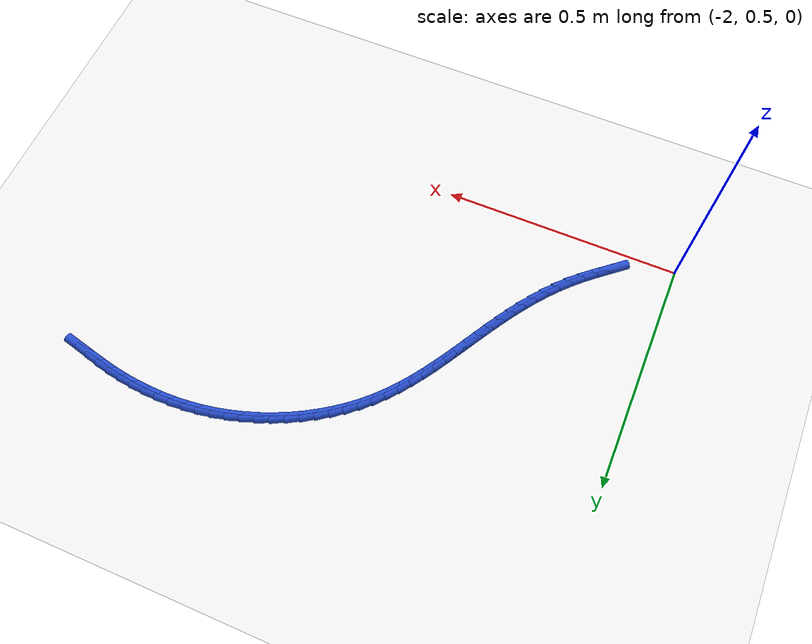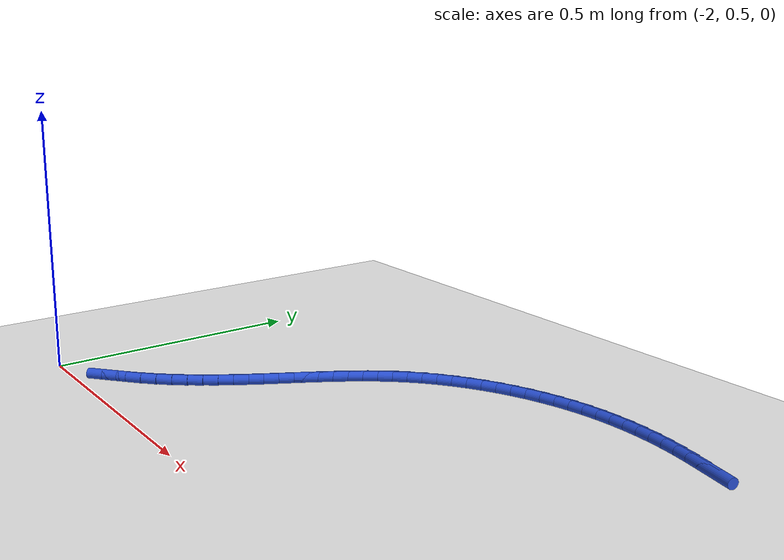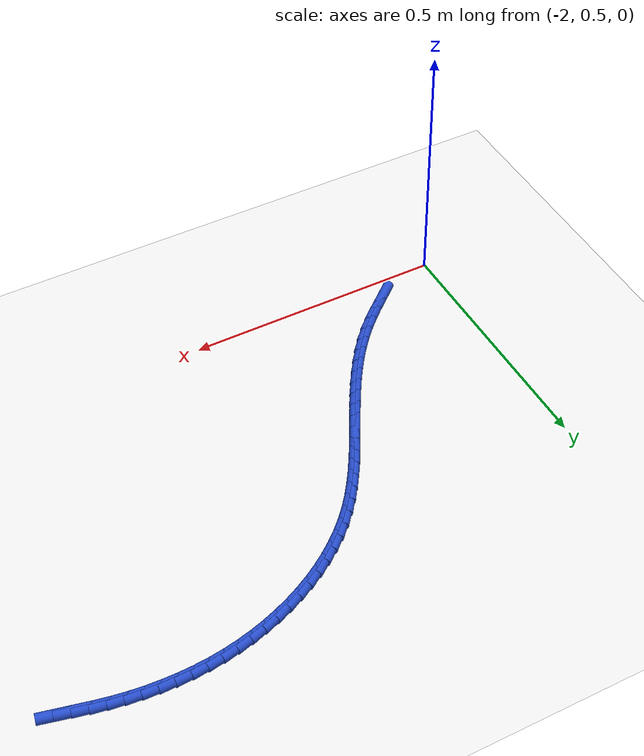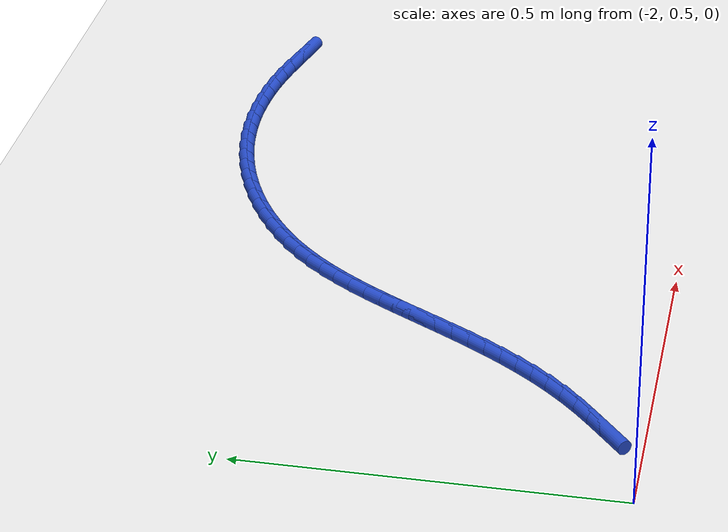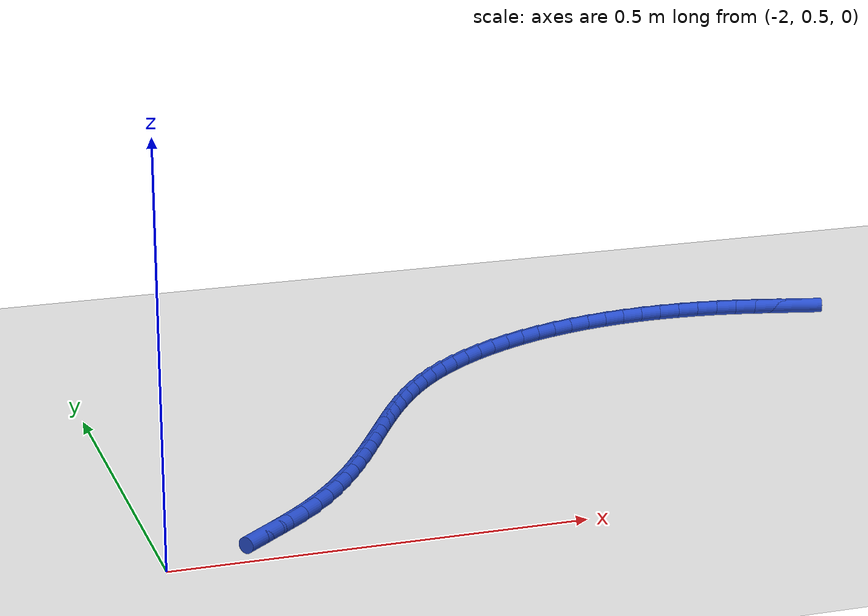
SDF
<sdf version="1.6">
 <world name="default">
  <model name="ground_plane">
   <static>1</static>
   <link name="link">
    <collision name="collision">
     <geometry><plane><normal>0 0 1</normal><size>100 100</size></plane></geometry>
     <surface><friction><ode><mu>100</mu><mu2>50</mu2></ode></friction></surface>
    </collision>
    <visual name="visual">
     <cast_shadows>0</cast_shadows>
     <geometry><plane><normal>0 0 1</normal><size>100 100</size></plane></geometry>
     <material>
      <script><uri>file://media/materials/scripts/gazebo.material</uri><name>Gazebo/WhiteGlow</name></script>
     </material>
    </visual>
   </link>
  </model>
  <model name="line">
   <link name="link_58">
    <pose>-0.9553868395924993 1.1362226404505071 0.01 0 1.57 -0.23844774797125545</pose>
    <collision name="collision">
     <geometry><cylinder><radius>0.01</radius><length>0.08</length></cylinder></geometry>
    </collision>
    <visual name="visual">
     <material>
      <script><name>Gazebo/Blue</name><uri>file://media/materials/scripts/gazebo.material</uri></script>
     </material>
     <geometry><cylinder><radius>0.01</radius><length>0.08</length></cylinder></geometry>
    </visual>
   </link>
   <link name="link_59">
    <pose>-0.982681610524131 1.1428572381630924 0.01 0 1.57 -0.235235805202622</pose>
    <collision name="collision">
     <geometry><cylinder><radius>0.01</radius><length>0.08</length></cylinder></geometry>
    </collision>
    <visual name="visual">
     <material>
      <script><name>Gazebo/Blue</name><uri>file://media/materials/scripts/gazebo.material</uri></script>
     </material>
     <geometry><cylinder><radius>0.01</radius><length>0.08</length></cylinder></geometry>
    </visual>
   </link>
   <link name="link_60">
    <pose>-1.0099273521593675 1.149387307893929 0.01 0 1.57 -0.20583534306553503</pose>
    <collision name="collision">
     <geometry><cylinder><radius>0.01</radius><length>0.08</length></cylinder></geometry>
    </collision>
    <visual name="visual">
     <material>
      <script><name>Gazebo/Blue</name><uri>file://media/materials/scripts/gazebo.material</uri></script>
     </material>
     <geometry><cylinder><radius>0.01</radius><length>0.08</length></cylinder></geometry>
    </visual>
   </link>
   <link name="link_61">
    <pose>-1.037386442582831 1.1551205579590513 0.01 0 1.57 -0.16207082154759567</pose>
    <collision name="collision">
     <geometry><cylinder><radius>0.01</radius><length>0.08</length></cylinder></geometry>
    </collision>
    <visual name="visual">
     <material>
      <script><name>Gazebo/Blue</name><uri>file://media/materials/scripts/gazebo.material</uri></script>
     </material>
     <geometry><cylinder><radius>0.01</radius><length>0.08</length></cylinder></geometry>
    </visual>
   </link>
   <link name="link_62">
    <pose>-1.0651689855441946 1.1596631406099343 0.01 0 1.57 -0.11675300569734133</pose>
    <collision name="collision">
     <geometry><cylinder><radius>0.01</radius><length>0.08</length></cylinder></geometry>
    </collision>
    <visual name="visual">
     <material>
      <script><name>Gazebo/Blue</name><uri>file://media/materials/scripts/gazebo.material</uri></script>
     </material>
     <geometry><cylinder><radius>0.01</radius><length>0.08</length></cylinder></geometry>
    </visual>
   </link>
   <link name="link_63">
    <pose>-1.0932159637631305 1.162952670033354 0.01 0 1.57 -0.07039067651279929</pose>
    <collision name="collision">
     <geometry><cylinder><radius>0.01</radius><length>0.08</length></cylinder></geometry>
    </collision>
    <visual name="visual">
     <material>
      <script><name>Gazebo/Blue</name><uri>file://media/materials/scripts/gazebo.material</uri></script>
     </material>
     <geometry><cylinder><radius>0.01</radius><length>0.08</length></cylinder></geometry>
    </visual>
   </link>
   <link name="link_64">
    <pose>-1.121459541081039 1.1649440446205361 0.01 0 1.57 -0.022839337135392157</pose>
    <collision name="collision">
     <geometry><cylinder><radius>0.01</radius><length>0.08</length></cylinder></geometry>
    </collision>
    <visual name="visual">
     <material>
      <script><name>Gazebo/Blue</name><uri>file://media/materials/scripts/gazebo.material</uri></script>
     </material>
     <geometry><cylinder><radius>0.01</radius><length>0.08</length></cylinder></geometry>
    </visual>
   </link>
   <link name="link_65">
    <pose>-1.1498318813393202 1.165592162762706 0.01 0 1.57 0.026028410227044985</pose>
    <collision name="collision">
     <geometry><cylinder><radius>0.01</radius><length>0.08</length></cylinder></geometry>
    </collision>
    <visual name="visual">
     <material>
      <script><name>Gazebo/Blue</name><uri>file://media/materials/scripts/gazebo.material</uri></script>
     </material>
     <geometry><cylinder><radius>0.01</radius><length>0.08</length></cylinder></geometry>
    </visual>
   </link>
   <link name="link_66">
    <pose>-1.1782651483793742 1.1648519228510892 0.01 0 1.57 0.0763192257150106</pose>
    <collision name="collision">
     <geometry><cylinder><radius>0.01</radius><length>0.08</length></cylinder></geometry>
    </collision>
    <visual name="visual">
     <material>
      <script><name>Gazebo/Blue</name><uri>file://media/materials/scripts/gazebo.material</uri></script>
     </material>
     <geometry><cylinder><radius>0.01</radius><length>0.08</length></cylinder></geometry>
    </visual>
   </link>
   <link name="link_67">
    <pose>-1.2066915060426018 1.1626782232769115 0.01 0 1.57 0.1281146541923208</pose>
    <collision name="collision">
     <geometry><cylinder><radius>0.01</radius><length>0.08</length></cylinder></geometry>
    </collision>
    <visual name="visual">
     <material>
      <script><name>Gazebo/Blue</name><uri>file://media/materials/scripts/gazebo.material</uri></script>
     </material>
     <geometry><cylinder><radius>0.01</radius><length>0.08</length></cylinder></geometry>
    </visual>
   </link>
   <link name="link_68">
    <pose>-1.2350431181704031 1.159025962431399 0.01 0 1.57 0.181339918541836</pose>
    <collision name="collision">
     <geometry><cylinder><radius>0.01</radius><length>0.08</length></cylinder></geometry>
    </collision>
    <visual name="visual">
     <material>
      <script><name>Gazebo/Blue</name><uri>file://media/materials/scripts/gazebo.material</uri></script>
     </material>
     <geometry><cylinder><radius>0.01</radius><length>0.08</length></cylinder></geometry>
    </visual>
   </link>
   <link name="link_69">
    <pose>-1.263250649568294 1.1538539943580917 0.01 0 1.57 0.23459493288735364</pose>
    <collision name="collision">
     <geometry><cylinder><radius>0.01</radius><length>0.08</length></cylinder></geometry>
    </collision>
    <visual name="visual">
     <material>
      <script><name>Gazebo/Blue</name><uri>file://media/materials/scripts/gazebo.material</uri></script>
     </material>
     <geometry><cylinder><radius>0.01</radius><length>0.08</length></cylinder></geometry>
    </visual>
   </link>
   <link name="link_70">
    <pose>-1.2912271157517572 1.1471677460049856 0.01 0 1.57 0.2871604845200584</pose>
    <collision name="collision">
     <geometry><cylinder><radius>0.01</radius><length>0.08</length></cylinder></geometry>
    </collision>
    <visual name="visual">
     <material>
      <script><name>Gazebo/Blue</name><uri>file://media/materials/scripts/gazebo.material</uri></script>
     </material>
     <geometry><cylinder><radius>0.01</radius><length>0.08</length></cylinder></geometry>
    </visual>
   </link>
   <link name="link_71">
    <pose>-1.3188740388072377 1.1390029731532172 0.01 0 1.57 0.33930637816420045</pose>
    <collision name="collision">
     <geometry><cylinder><radius>0.01</radius><length>0.08</length></cylinder></geometry>
    </collision>
    <visual name="visual">
     <material>
      <script><name>Gazebo/Blue</name><uri>file://media/materials/scripts/gazebo.material</uri></script>
     </material>
     <geometry><cylinder><radius>0.01</radius><length>0.08</length></cylinder></geometry>
    </visual>
   </link>
   <link name="link_72">
    <pose>-1.3460927444085493 1.129395949877103 0.01 0 1.57 0.39131966595996676</pose>
    <collision name="collision">
     <geometry><cylinder><radius>0.01</radius><length>0.08</length></cylinder></geometry>
    </collision>
    <visual name="visual">
     <material>
      <script><name>Gazebo/Blue</name><uri>file://media/materials/scripts/gazebo.material</uri></script>
     </material>
     <geometry><cylinder><radius>0.01</radius><length>0.08</length></cylinder></geometry>
    </visual>
   </link>
   <link name="link_73">
    <pose>-1.3727845582295044 1.1183829502509606 0.01 0 1.57 0.4434869690823588</pose>
    <collision name="collision">
     <geometry><cylinder><radius>0.01</radius><length>0.08</length></cylinder></geometry>
    </collision>
    <visual name="visual">
     <material>
      <script><name>Gazebo/Blue</name><uri>file://media/materials/scripts/gazebo.material</uri></script>
     </material>
     <geometry><cylinder><radius>0.01</radius><length>0.08</length></cylinder></geometry>
    </visual>
   </link>
   <link name="link_74">
    <pose>-1.3988508059439173 1.1060002483491063 0.01 0 1.57 0.4960934892066461</pose>
    <collision name="collision">
     <geometry><cylinder><radius>0.01</radius><length>0.08</length></cylinder></geometry>
    </collision>
    <visual name="visual">
     <material>
      <script><name>Gazebo/Blue</name><uri>file://media/materials/scripts/gazebo.material</uri></script>
     </material>
     <geometry><cylinder><radius>0.01</radius><length>0.08</length></cylinder></geometry>
    </visual>
   </link>
   <link name="link_75">
    <pose>-1.424192813225602 1.0922841182458578 0.01 0 1.57 0.5494217967895387</pose>
    <collision name="collision">
     <geometry><cylinder><radius>0.01</radius><length>0.08</length></cylinder></geometry>
    </collision>
    <visual name="visual">
     <material>
      <script><name>Gazebo/Blue</name><uri>file://media/materials/scripts/gazebo.material</uri></script>
     </material>
     <geometry><cylinder><radius>0.01</radius><length>0.08</length></cylinder></geometry>
    </visual>
   </link>
   <link name="link_76">
    <pose>-1.4487119057483715 1.0772708340155328 0.01 0 1.57 0.6037500220967859</pose>
    <collision name="collision">
     <geometry><cylinder><radius>0.01</radius><length>0.08</length></cylinder></geometry>
    </collision>
    <visual name="visual">
     <material>
      <script><name>Gazebo/Blue</name><uri>file://media/materials/scripts/gazebo.material</uri></script>
     </material>
     <geometry><cylinder><radius>0.01</radius><length>0.08</length></cylinder></geometry>
    </visual>
   </link>
   <link name="link_77">
    <pose>-1.4723094091860398 1.0609966697324478 0.01 0 1.57 0.6593490635842197</pose>
    <collision name="collision">
     <geometry><cylinder><radius>0.01</radius><length>0.08</length></cylinder></geometry>
    </collision>
    <visual name="visual">
     <material>
      <script><name>Gazebo/Blue</name><uri>file://media/materials/scripts/gazebo.material</uri></script>
     </material>
     <geometry><cylinder><radius>0.01</radius><length>0.08</length></cylinder></geometry>
    </visual>
   </link>
   <link name="link_78">
    <pose>-1.4948866492124202 1.04349789947092 0.01 0 1.57 0.7164784177701606</pose>
    <collision name="collision">
     <geometry><cylinder><radius>0.01</radius><length>0.08</length></cylinder></geometry>
    </collision>
    <visual name="visual">
     <material>
      <script><name>Gazebo/Blue</name><uri>file://media/materials/scripts/gazebo.material</uri></script>
     </material>
     <geometry><cylinder><radius>0.01</radius><length>0.08</length></cylinder></geometry>
    </visual>
   </link>
   <link name="link_79">
    <pose>-1.5163449515013265 1.0248107973052667 0.01 0 1.57 0.7753802417953028</pose>
    <collision name="collision">
     <geometry><cylinder><radius>0.01</radius><length>0.08</length></cylinder></geometry>
    </collision>
    <visual name="visual">
     <material>
      <script><name>Gazebo/Blue</name><uri>file://media/materials/scripts/gazebo.material</uri></script>
     </material>
     <geometry><cylinder><radius>0.01</radius><length>0.08</length></cylinder></geometry>
    </visual>
   </link>
   <link name="link_80">
    <pose>-1.5365856417265724 1.0049716373098052 0.01 0 1.57 0.8357814736558612</pose>
    <collision name="collision">
     <geometry><cylinder><radius>0.01</radius><length>0.08</length></cylinder></geometry>
    </collision>
    <visual name="visual">
     <material>
      <script><name>Gazebo/Blue</name><uri>file://media/materials/scripts/gazebo.material</uri></script>
     </material>
     <geometry><cylinder><radius>0.01</radius><length>0.08</length></cylinder></geometry>
    </visual>
   </link>
   <link name="link_81">
    <pose>-1.5555233434190827 0.9840226078759673 0.01 0 1.57 0.8920228859091139</pose>
    <collision name="collision">
     <geometry><cylinder><radius>0.01</radius><length>0.08</length></cylinder></geometry>
    </collision>
    <visual name="visual">
     <material>
      <script><name>Gazebo/Blue</name><uri>file://media/materials/scripts/gazebo.material</uri></script>
     </material>
     <geometry><cylinder><radius>0.01</radius><length>0.08</length></cylinder></geometry>
    </visual>
   </link>
   <link name="link_82">
    <pose>-1.5732273117717295 0.9620746709334382 0.01 0 1.57 0.9401763185733379</pose>
    <collision name="collision">
     <geometry><cylinder><radius>0.01</radius><length>0.08</length></cylinder></geometry>
    </collision>
    <visual name="visual">
     <material>
      <script><name>Gazebo/Blue</name><uri>file://media/materials/scripts/gazebo.material</uri></script>
     </material>
     <geometry><cylinder><radius>0.01</radius><length>0.08</length></cylinder></geometry>
    </visual>
   </link>
   <link name="link_83">
    <pose>-1.5898665852714977 0.9392831677460476 0.01 0 1.57 0.9800676047944356</pose>
    <collision name="collision">
     <geometry><cylinder><radius>0.01</radius><length>0.08</length></cylinder></geometry>
    </collision>
    <visual name="visual">
     <material>
      <script><name>Gazebo/Blue</name><uri>file://media/materials/scripts/gazebo.material</uri></script>
     </material>
     <geometry><cylinder><radius>0.01</radius><length>0.08</length></cylinder></geometry>
    </visual>
   </link>
   <link name="link_84">
    <pose>-1.6056118664009287 0.9158041796515557 0.01 0 1.57 1.011733033863947</pose>
    <collision name="collision">
     <geometry><cylinder><radius>0.01</radius><length>0.08</length></cylinder></geometry>
    </collision>
    <visual name="visual">
     <material>
      <script><name>Gazebo/Blue</name><uri>file://media/materials/scripts/gazebo.material</uri></script>
     </material>
     <geometry><cylinder><radius>0.01</radius><length>0.08</length></cylinder></geometry>
    </visual>
   </link>
   <link name="link_85">
    <pose>-1.6206338576425652 0.8917937879877248 0.01 0 1.57 1.0352766196394807</pose>
    <collision name="collision">
     <geometry><cylinder><radius>0.01</radius><length>0.08</length></cylinder></geometry>
    </collision>
    <visual name="visual">
     <material>
      <script><name>Gazebo/Blue</name><uri>file://media/materials/scripts/gazebo.material</uri></script>
     </material>
     <geometry><cylinder><radius>0.01</radius><length>0.08</length></cylinder></geometry>
    </visual>
   </link>
   <link name="link_86">
    <pose>-1.6351032614789498 0.8674080740923159 0.01 0 1.57 1.050806704023197</pose>
    <collision name="collision">
     <geometry><cylinder><radius>0.01</radius><length>0.08</length></cylinder></geometry>
    </collision>
    <visual name="visual">
     <material>
      <script><name>Gazebo/Blue</name><uri>file://media/materials/scripts/gazebo.material</uri></script>
     </material>
     <geometry><cylinder><radius>0.01</radius><length>0.08</length></cylinder></geometry>
    </visual>
   </link>
   <link name="link_87">
    <pose>-1.6491907803926247 0.8428031193030905 0.01 0 1.57 1.0583907871140403</pose>
    <collision name="collision">
     <geometry><cylinder><radius>0.01</radius><length>0.08</length></cylinder></geometry>
    </collision>
    <visual name="visual">
     <material>
      <script><name>Gazebo/Blue</name><uri>file://media/materials/scripts/gazebo.material</uri></script>
     </material>
     <geometry><cylinder><radius>0.01</radius><length>0.08</length></cylinder></geometry>
    </visual>
   </link>
   <link name="link_88">
    <pose>-1.6630671168661324 0.8181350049578103 0.01 0 1.57 1.0580264118566227</pose>
    <collision name="collision">
     <geometry><cylinder><radius>0.01</radius><length>0.08</length></cylinder></geometry>
    </collision>
    <visual name="visual">
     <material>
      <script><name>Gazebo/Blue</name><uri>file://media/materials/scripts/gazebo.material</uri></script>
     </material>
     <geometry><cylinder><radius>0.01</radius><length>0.08</length></cylinder></geometry>
    </visual>
   </link>
   <link name="link_89">
    <pose>-1.676902973382016 0.7935598123942367 0.01 0 1.57 1.0498595523229968</pose>
    <collision name="collision">
     <geometry><cylinder><radius>0.01</radius><length>0.08</length></cylinder></geometry>
    </collision>
    <visual name="visual">
     <material>
      <script><name>Gazebo/Blue</name><uri>file://media/materials/scripts/gazebo.material</uri></script>
     </material>
     <geometry><cylinder><radius>0.01</radius><length>0.08</length></cylinder></geometry>
    </visual>
   </link>
   <link name="link_90">
    <pose>-1.6908685958207024 0.7692212495880354 0.01 0 1.57 1.0352005071771602</pose>
    <collision name="collision">
     <geometry><cylinder><radius>0.01</radius><length>0.08</length></cylinder></geometry>
    </collision>
    <visual name="visual">
     <material>
      <script><name>Gazebo/Blue</name><uri>file://media/materials/scripts/gazebo.material</uri></script>
     </material>
     <geometry><cylinder><radius>0.01</radius><length>0.08</length></cylinder></geometry>
    </visual>
   </link>
   <link name="link_91">
    <pose>-1.7051314541758147 0.7451878013579961 0.01 0 1.57 1.0145852354544191</pose>
    <collision name="collision">
     <geometry><cylinder><radius>0.01</radius><length>0.08</length></cylinder></geometry>
    </collision>
    <visual name="visual">
     <material>
      <script><name>Gazebo/Blue</name><uri>file://media/materials/scripts/gazebo.material</uri></script>
     </material>
     <geometry><cylinder><radius>0.01</radius><length>0.08</length></cylinder></geometry>
    </visual>
   </link>
   <link name="link_92">
    <pose>-1.7198579751731382 0.7214996812330824 0.01 0 1.57 0.98811495338782</pose>
    <collision name="collision">
     <geometry><cylinder><radius>0.01</radius><length>0.08</length></cylinder></geometry>
    </collision>
    <visual name="visual">
     <material>
      <script><name>Gazebo/Blue</name><uri>file://media/materials/scripts/gazebo.material</uri></script>
     </material>
     <geometry><cylinder><radius>0.01</radius><length>0.08</length></cylinder></geometry>
    </visual>
   </link>
   <link name="link_93">
    <pose>-1.7352145836638337 0.6981970519422334 0.01 0 1.57 0.9559972169940716</pose>
    <collision name="collision">
     <geometry><cylinder><radius>0.01</radius><length>0.08</length></cylinder></geometry>
    </collision>
    <visual name="visual">
     <material>
      <script><name>Gazebo/Blue</name><uri>file://media/materials/scripts/gazebo.material</uri></script>
     </material>
     <geometry><cylinder><radius>0.01</radius><length>0.08</length></cylinder></geometry>
    </visual>
   </link>
   <link name="link_94">
    <pose>-1.7513677044990623 0.6753200762143878 0.01 0 1.57 0.918566244228401</pose>
    <collision name="collision">
     <geometry><cylinder><radius>0.01</radius><length>0.08</length></cylinder></geometry>
    </collision>
    <visual name="visual">
     <material>
      <script><name>Gazebo/Blue</name><uri>file://media/materials/scripts/gazebo.material</uri></script>
     </material>
     <geometry><cylinder><radius>0.01</radius><length>0.08</length></cylinder></geometry>
    </visual>
   </link>
   <link name="link_95">
    <pose>-1.7684837625299843 0.6529089167784847 0.01 0 1.57 0.8762977974906834</pose>
    <collision name="collision">
     <geometry><cylinder><radius>0.01</radius><length>0.08</length></cylinder></geometry>
    </collision>
    <visual name="visual">
     <material>
      <script><name>Gazebo/Blue</name><uri>file://media/materials/scripts/gazebo.material</uri></script>
     </material>
     <geometry><cylinder><radius>0.01</radius><length>0.08</length></cylinder></geometry>
    </visual>
   </link>
   <link name="link_96">
    <pose>-1.78672918260776 0.6310037363634627 0.01 0 1.57 0.8298144277699098</pose>
    <collision name="collision">
     <geometry><cylinder><radius>0.01</radius><length>0.08</length></cylinder></geometry>
    </collision>
    <visual name="visual">
     <material>
      <script><name>Gazebo/Blue</name><uri>file://media/materials/scripts/gazebo.material</uri></script>
     </material>
     <geometry><cylinder><radius>0.01</radius><length>0.08</length></cylinder></geometry>
    </visual>
   </link>
   <link name="link_97">
    <pose>-1.8062703895835523 0.6096446976982609 0.01 0 1.57 0.7798954212455946</pose>
    <collision name="collision">
     <geometry><cylinder><radius>0.01</radius><length>0.08</length></cylinder></geometry>
    </collision>
    <visual name="visual">
     <material>
      <script><name>Gazebo/Blue</name><uri>file://media/materials/scripts/gazebo.material</uri></script>
     </material>
     <geometry><cylinder><radius>0.01</radius><length>0.08</length></cylinder></geometry>
    </visual>
   </link>
   <link name="link_98">
    <pose>-1.8272732051176583 0.5888717656516013 0.01 0 1.57 0.7341722182087266</pose>
    <collision name="collision">
     <geometry><cylinder><radius>0.01</radius><length>0.08</length></cylinder></geometry>
    </collision>
    <visual name="visual">
     <material>
      <script><name>Gazebo/Blue</name><uri>file://media/materials/scripts/gazebo.material</uri></script>
     </material>
     <geometry><cylinder><radius>0.01</radius><length>0.08</length></cylinder></geometry>
    </visual>
   </link>
   <link name="link_99">
    <pose>-1.8496791345937955 0.5686513242906687 0.01 0 1.57 0.7087884484067445</pose>
    <collision name="collision">
     <geometry><cylinder><radius>0.01</radius><length>0.08</length></cylinder></geometry>
    </collision>
    <visual name="visual">
     <material>
      <script><name>Gazebo/Blue</name><uri>file://media/materials/scripts/gazebo.material</uri></script>
     </material>
     <geometry><cylinder><radius>0.01</radius><length>0.08</length></cylinder></geometry>
    </visual>
   </link>
   <link name="link_100">
    <pose>-1.8728706290074517 0.5487663752254511 0.01 0 1.57 0.7047873605136897</pose>
    <collision name="collision">
     <geometry><cylinder><radius>0.01</radius><length>0.08</length></cylinder></geometry>
    </collision>
    <visual name="visual">
     <material>
      <script><name>Gazebo/Blue</name><uri>file://media/materials/scripts/gazebo.material</uri></script>
     </material>
     <geometry><cylinder><radius>0.01</radius><length>0.08</length></cylinder></geometry>
    </visual>
   </link>
  </model>
 </world>
</sdf>
